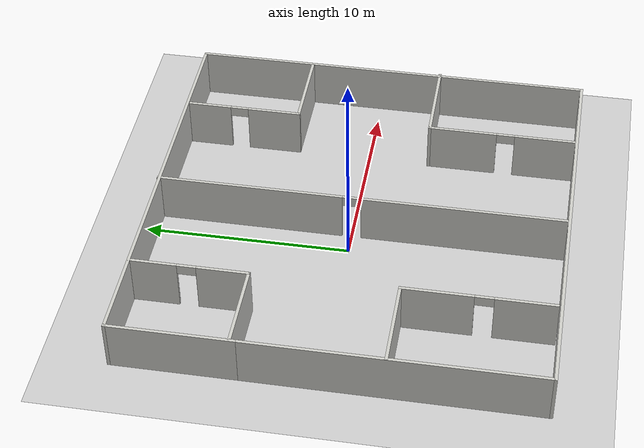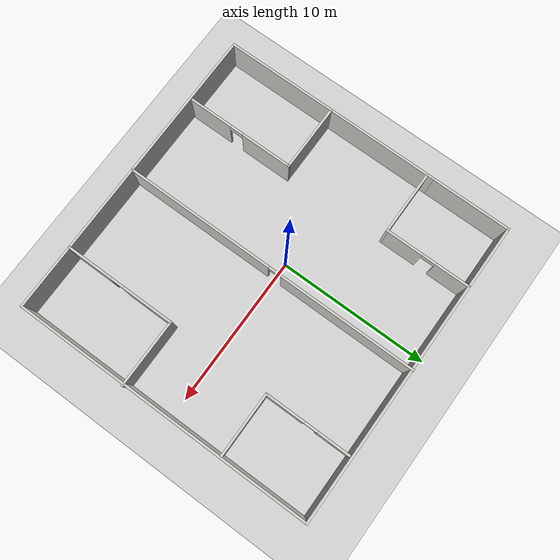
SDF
<sdf version="1.7">
 <world name="default">
  <light name="sun" type="directional">
   <pose>0 0 10 0 -0 0</pose>
   <diffuse>0.8 0.8 0.8 1</diffuse>
   <specular>0.2 0.2 0.2 1</specular>
   <attenuation>
    <range>1000</range>
    <constant>0.9</constant>
    <linear>0.01</linear>
    <quadratic>0.001</quadratic>
   </attenuation>
   <direction>-0.5 0.1 -0.9</direction>
   <spot><inner_angle>0</inner_angle><outer_angle>0</outer_angle><falloff>0</falloff></spot>
  </light>
  <model name="ground_plane">
   <static>1</static>
   <link name="link">
    <collision name="collision">
     <geometry><plane><normal>0 0 1</normal><size>100 100</size></plane></geometry>
     <surface>
      <contact><collide_bitmask>65535</collide_bitmask></contact>
      <friction><ode><mu>100</mu><mu2>50</mu2></ode></friction>
     </surface>
    </collision>
    <visual name="visual">
     <cast_shadows>0</cast_shadows>
     <geometry><plane><normal>0 0 1</normal><size>100 100</size></plane></geometry>
     <material>
      <script><uri>file://media/materials/scripts/gazebo.material</uri><name>Gazebo/Grey</name></script>
     </material>
    </visual>
   </link>
  </model>
  <gravity>0 0 -9.8</gravity>
  <magnetic_field>6e-06 2.3e-05 -4.2e-05</magnetic_field>
  <atmosphere type="adiabatic"/>
  <physics type="ode">
   <max_step_size>0.001</max_step_size>
   <real_time_factor>1</real_time_factor>
   <real_time_update_rate>1000</real_time_update_rate>
  </physics>
  <scene><ambient>0.4 0.4 0.4 1</ambient><background>0.7 0.7 0.7 1</background><shadows>1</shadows></scene>
  <spherical_coordinates>
   <surface_model>EARTH_WGS84</surface_model>
   <latitude_deg>0</latitude_deg>
   <longitude_deg>0</longitude_deg>
   <elevation>0</elevation>
   <heading_deg>0</heading_deg>
  </spherical_coordinates>
  <model name="uni.world">
   <pose>1.22453 -0.447827 0 0 -0 0</pose>
   <link name="Wall_62">
    <collision name="Wall_62_Collision">
     <geometry><box><size>14.75 0.15 2.5</size></box></geometry>
     <pose>0 0 1.25 0 -0 0</pose>
    </collision>
    <visual name="Wall_62_Visual">
     <pose>0 0 1.25 0 -0 0</pose>
     <geometry><box><size>14.75 0.15 2.5</size></box></geometry>
     <material>
      <script><uri>file://media/materials/scripts/gazebo.material</uri><name>Gazebo/CeilingTiled</name></script>
      <ambient>1 1 1 1</ambient>
     </material>
     <meta><layer>0</layer></meta>
    </visual>
    <pose>-10.0967 -2.64495 0 0 -0 -1.5708</pose>
   </link>
   <link name="Wall_63">
    <collision name="Wall_63_Collision">
     <geometry><box><size>20.25 0.15 2.5</size></box></geometry>
     <pose>0 0 1.25 0 -0 0</pose>
    </collision>
    <visual name="Wall_63_Visual">
     <pose>0 0 1.25 0 -0 0</pose>
     <geometry><box><size>20.25 0.15 2.5</size></box></geometry>
     <material>
      <script><uri>file://media/materials/scripts/gazebo.material</uri><name>Gazebo/CeilingTiled</name></script>
      <ambient>1 1 1 1</ambient>
     </material>
     <meta><layer>0</layer></meta>
    </visual>
    <pose>-0.046731 -9.94496 0 0 -0 0</pose>
   </link>
   <link name="Wall_64">
    <collision name="Wall_64_Collision">
     <geometry><box><size>20 0.15 2.5</size></box></geometry>
     <pose>0 0 1.25 0 -0 0</pose>
    </collision>
    <visual name="Wall_64_Visual">
     <pose>0 0 1.25 0 -0 0</pose>
     <geometry><box><size>20 0.15 2.5</size></box></geometry>
     <material>
      <script><uri>file://media/materials/scripts/gazebo.material</uri><name>Gazebo/CeilingTiled</name></script>
      <ambient>1 1 1 1</ambient>
     </material>
     <meta><layer>0</layer></meta>
    </visual>
    <pose>10.0033 -0.019955 0 0 -0 1.5708</pose>
   </link>
   <link name="Wall_65">
    <collision name="Wall_65_Collision">
     <geometry><box><size>20.25 0.15 2.5</size></box></geometry>
     <pose>0 0 1.25 0 -0 0</pose>
    </collision>
    <visual name="Wall_65_Visual">
     <pose>0 0 1.25 0 -0 0</pose>
     <geometry><box><size>20.25 0.15 2.5</size></box></geometry>
     <material>
      <script><uri>file://media/materials/scripts/gazebo.material</uri><name>Gazebo/CeilingTiled</name></script>
      <ambient>1 1 1 1</ambient>
     </material>
     <meta><layer>0</layer></meta>
    </visual>
    <pose>-0.046731 9.90504 0 0 -0 3.14159</pose>
   </link>
   <link name="Wall_66">
    <collision name="Wall_66_Collision">
     <geometry><box><size>6 0.15 2.5</size></box></geometry>
     <pose>0 0 1.25 0 -0 0</pose>
    </collision>
    <visual name="Wall_66_Visual">
     <pose>0 0 1.25 0 -0 0</pose>
     <geometry><box><size>6 0.15 2.5</size></box></geometry>
     <material>
      <script><uri>file://media/materials/scripts/gazebo.material</uri><name>Gazebo/CeilingTiled</name></script>
      <ambient>1 1 1 1</ambient>
     </material>
     <meta><layer>0</layer></meta>
    </visual>
    <pose>-10.0967 6.98004 0 0 -0 -1.5708</pose>
   </link>
   <link name="Wall_70">
    <pose>-0.092284 0.019955 0 0 -0 -1.5708</pose>
    <visual name="Wall_70_Visual_0">
     <pose>-5.44678 0 1.25 0 -0 0</pose>
     <geometry><box><size>9.10645 0.15 2.5</size></box></geometry>
     <material>
      <script><uri>file://media/materials/scripts/gazebo.material</uri><name>Gazebo/CeilingTiled</name></script>
      <ambient>1 1 1 1</ambient>
     </material>
     <meta><layer>0</layer></meta>
    </visual>
    <collision name="Wall_70_Collision_0">
     <geometry><box><size>9.10645 0.15 2.5</size></box></geometry>
     <pose>-5.44678 0 1.25 0 -0 0</pose>
    </collision>
    <visual name="Wall_70_Visual_1">
     <pose>5.00322 0 1.25 0 -0 0</pose>
     <geometry><box><size>9.99355 0.15 2.5</size></box></geometry>
     <material>
      <script><uri>file://media/materials/scripts/gazebo.material</uri><name>Gazebo/CeilingTiled</name></script>
      <ambient>1 1 1 1</ambient>
     </material>
     <meta><layer>0</layer></meta>
    </visual>
    <collision name="Wall_70_Collision_1">
     <geometry><box><size>9.99355 0.15 2.5</size></box></geometry>
     <pose>5.00322 0 1.25 0 -0 0</pose>
    </collision>
    <visual name="Wall_70_Visual_2">
     <pose>-0.443554 0 2.25 0 -0 0</pose>
     <geometry><box><size>0.9 0.15 0.5</size></box></geometry>
     <material>
      <script><uri>file://media/materials/scripts/gazebo.material</uri><name>Gazebo/CeilingTiled</name></script>
      <ambient>1 1 1 1</ambient>
     </material>
     <meta><layer>0</layer></meta>
    </visual>
    <collision name="Wall_70_Collision_2">
     <geometry><box><size>0.9 0.15 0.5</size></box></geometry>
     <pose>-0.443554 0 2.25 0 -0 0</pose>
    </collision>
   </link>
   <link name="Wall_72">
    <pose>-5.89436 7.0742 0 0 -0 -1.5708</pose>
    <visual name="Wall_72_Visual_0">
     <pose>-1.71812 0 1.25 0 -0 0</pose>
     <geometry><box><size>2.31377 0.15 2.5</size></box></geometry>
     <material>
      <script><uri>file://media/materials/scripts/gazebo.material</uri><name>Gazebo/CeilingTiled</name></script>
      <ambient>1 1 1 1</ambient>
     </material>
     <meta><layer>0</layer></meta>
    </visual>
    <collision name="Wall_72_Collision_0">
     <geometry><box><size>2.31377 0.15 2.5</size></box></geometry>
     <pose>-1.71812 0 1.25 0 -0 0</pose>
    </collision>
    <visual name="Wall_72_Visual_1">
     <pose>1.60688 0 1.25 0 -0 0</pose>
     <geometry><box><size>2.53623 0.15 2.5</size></box></geometry>
     <material>
      <script><uri>file://media/materials/scripts/gazebo.material</uri><name>Gazebo/CeilingTiled</name></script>
      <ambient>1 1 1 1</ambient>
     </material>
     <meta><layer>0</layer></meta>
    </visual>
    <collision name="Wall_72_Collision_1">
     <geometry><box><size>2.53623 0.15 2.5</size></box></geometry>
     <pose>1.60688 0 1.25 0 -0 0</pose>
    </collision>
    <visual name="Wall_72_Visual_2">
     <pose>-0.111232 0 2.25 0 -0 0</pose>
     <geometry><box><size>0.9 0.15 0.5</size></box></geometry>
     <material>
      <script><uri>file://media/materials/scripts/gazebo.material</uri><name>Gazebo/CeilingTiled</name></script>
      <ambient>1 1 1 1</ambient>
     </material>
     <meta><layer>0</layer></meta>
    </visual>
    <collision name="Wall_72_Collision_2">
     <geometry><box><size>0.9 0.15 0.5</size></box></geometry>
     <pose>-0.111232 0 2.25 0 -0 0</pose>
    </collision>
   </link>
   <link name="Wall_73">
    <collision name="Wall_73_Collision">
     <geometry><box><size>4.25 0.15 2.5</size></box></geometry>
     <pose>0 0 1.25 0 -0 0</pose>
    </collision>
    <visual name="Wall_73_Visual">
     <pose>0 0 1.25 0 -0 0</pose>
     <geometry><box><size>4.25 0.15 2.5</size></box></geometry>
     <material>
      <script><uri>file://media/materials/scripts/gazebo.material</uri><name>Gazebo/CeilingTiled</name></script>
      <ambient>1 1 1 1</ambient>
     </material>
     <meta><layer>0</layer></meta>
    </visual>
    <pose>-7.94436 4.2742 0 0 -0 3.14159</pose>
   </link>
   <link name="Wall_78">
    <collision name="Wall_78_Collision">
     <geometry><box><size>4.5 0.15 2.5</size></box></geometry>
     <pose>0 0 1.25 0 -0 0</pose>
    </collision>
    <visual name="Wall_78_Visual">
     <pose>0 0 1.25 0 -0 0</pose>
     <geometry><box><size>4.5 0.15 2.5</size></box></geometry>
     <material>
      <script><uri>file://media/materials/scripts/gazebo.material</uri><name>Gazebo/CeilingTiled</name></script>
      <ambient>1 1 1 1</ambient>
     </material>
     <meta><layer>0</layer></meta>
    </visual>
    <pose>-7.89403 -2.6498 0 0 -0 0</pose>
   </link>
   <link name="Wall_79">
    <pose>-5.71903 -6.1998 0 0 -0 -1.5708</pose>
    <visual name="Wall_79_Visual_0">
     <pose>-1.90206 0 1.25 0 -0 0</pose>
     <geometry><box><size>3.44588 0.15 2.5</size></box></geometry>
     <material>
      <script><uri>file://media/materials/scripts/gazebo.material</uri><name>Gazebo/CeilingTiled</name></script>
      <ambient>1 1 1 1</ambient>
     </material>
     <meta><layer>0</layer></meta>
    </visual>
    <collision name="Wall_79_Collision_0">
     <geometry><box><size>3.44588 0.15 2.5</size></box></geometry>
     <pose>-1.90206 0 1.25 0 -0 0</pose>
    </collision>
    <visual name="Wall_79_Visual_1">
     <pose>2.17294 0 1.25 0 -0 0</pose>
     <geometry><box><size>2.90412 0.15 2.5</size></box></geometry>
     <material>
      <script><uri>file://media/materials/scripts/gazebo.material</uri><name>Gazebo/CeilingTiled</name></script>
      <ambient>1 1 1 1</ambient>
     </material>
     <meta><layer>0</layer></meta>
    </visual>
    <collision name="Wall_79_Collision_1">
     <geometry><box><size>2.90412 0.15 2.5</size></box></geometry>
     <pose>2.17294 0 1.25 0 -0 0</pose>
    </collision>
    <visual name="Wall_79_Visual_2">
     <pose>0.270881 0 2.25 0 -0 0</pose>
     <geometry><box><size>0.9 0.15 0.5</size></box></geometry>
     <material>
      <script><uri>file://media/materials/scripts/gazebo.material</uri><name>Gazebo/CeilingTiled</name></script>
      <ambient>1 1 1 1</ambient>
     </material>
     <meta><layer>0</layer></meta>
    </visual>
    <collision name="Wall_79_Collision_2">
     <geometry><box><size>0.9 0.15 0.5</size></box></geometry>
     <pose>0.270881 0 2.25 0 -0 0</pose>
    </collision>
   </link>
   <link name="Wall_81">
    <collision name="Wall_81_Collision">
     <geometry><box><size>4.5 0.15 2.5</size></box></geometry>
     <pose>0 0 1.25 0 -0 0</pose>
    </collision>
    <visual name="Wall_81_Visual">
     <pose>0 0 1.25 0 -0 0</pose>
     <geometry><box><size>4.5 0.15 2.5</size></box></geometry>
     <material>
      <script><uri>file://media/materials/scripts/gazebo.material</uri><name>Gazebo/CeilingTiled</name></script>
      <ambient>1 1 1 1</ambient>
     </material>
     <meta><layer>0</layer></meta>
    </visual>
    <pose>7.92173 -2.57904 0 0 -0 3.14159</pose>
   </link>
   <link name="Wall_82">
    <pose>5.74673 -6.25404 0 0 -0 -1.5708</pose>
    <visual name="Wall_82_Visual_0">
     <pose>-2.02706 0 1.25 0 -0 0</pose>
     <geometry><box><size>3.44588 0.15 2.5</size></box></geometry>
     <material>
      <script><uri>file://media/materials/scripts/gazebo.material</uri><name>Gazebo/CeilingTiled</name></script>
      <ambient>1 1 1 1</ambient>
     </material>
     <meta><layer>0</layer></meta>
    </visual>
    <collision name="Wall_82_Collision_0">
     <geometry><box><size>3.44588 0.15 2.5</size></box></geometry>
     <pose>-2.02706 0 1.25 0 -0 0</pose>
    </collision>
    <visual name="Wall_82_Visual_1">
     <pose>2.17294 0 1.25 0 -0 0</pose>
     <geometry><box><size>3.15412 0.15 2.5</size></box></geometry>
     <material>
      <script><uri>file://media/materials/scripts/gazebo.material</uri><name>Gazebo/CeilingTiled</name></script>
      <ambient>1 1 1 1</ambient>
     </material>
     <meta><layer>0</layer></meta>
    </visual>
    <collision name="Wall_82_Collision_1">
     <geometry><box><size>3.15412 0.15 2.5</size></box></geometry>
     <pose>2.17294 0 1.25 0 -0 0</pose>
    </collision>
    <visual name="Wall_82_Visual_2">
     <pose>0.145881 0 2.25 0 -0 0</pose>
     <geometry><box><size>0.9 0.15 0.5</size></box></geometry>
     <material>
      <script><uri>file://media/materials/scripts/gazebo.material</uri><name>Gazebo/CeilingTiled</name></script>
      <ambient>1 1 1 1</ambient>
     </material>
     <meta><layer>0</layer></meta>
    </visual>
    <collision name="Wall_82_Collision_2">
     <geometry><box><size>0.9 0.15 0.5</size></box></geometry>
     <pose>0.145881 0 2.25 0 -0 0</pose>
    </collision>
   </link>
   <link name="Wall_84">
    <pose>5.78055 6.93268 0 0 -0 -1.5708</pose>
    <visual name="Wall_84_Visual_0">
     <pose>-1.78887 0 1.25 0 -0 0</pose>
     <geometry><box><size>2.17225 0.15 2.5</size></box></geometry>
     <material>
      <script><uri>file://media/materials/scripts/gazebo.material</uri><name>Gazebo/CeilingTiled</name></script>
      <ambient>1 1 1 1</ambient>
     </material>
     <meta><layer>0</layer></meta>
    </visual>
    <collision name="Wall_84_Collision_0">
     <geometry><box><size>2.17225 0.15 2.5</size></box></geometry>
     <pose>-1.78887 0 1.25 0 -0 0</pose>
    </collision>
    <visual name="Wall_84_Visual_1">
     <pose>1.53613 0 1.25 0 -0 0</pose>
     <geometry><box><size>2.67775 0.15 2.5</size></box></geometry>
     <material>
      <script><uri>file://media/materials/scripts/gazebo.material</uri><name>Gazebo/CeilingTiled</name></script>
      <ambient>1 1 1 1</ambient>
     </material>
     <meta><layer>0</layer></meta>
    </visual>
    <collision name="Wall_84_Collision_1">
     <geometry><box><size>2.67775 0.15 2.5</size></box></geometry>
     <pose>1.53613 0 1.25 0 -0 0</pose>
    </collision>
    <visual name="Wall_84_Visual_2">
     <pose>-0.252746 0 2.25 0 -0 0</pose>
     <geometry><box><size>0.9 0.15 0.5</size></box></geometry>
     <material>
      <script><uri>file://media/materials/scripts/gazebo.material</uri><name>Gazebo/CeilingTiled</name></script>
      <ambient>1 1 1 1</ambient>
     </material>
     <meta><layer>0</layer></meta>
    </visual>
    <collision name="Wall_84_Collision_2">
     <geometry><box><size>0.9 0.15 0.5</size></box></geometry>
     <pose>-0.252746 0 2.25 0 -0 0</pose>
    </collision>
   </link>
   <link name="Wall_85">
    <collision name="Wall_85_Collision">
     <geometry><box><size>4.25 0.15 2.5</size></box></geometry>
     <pose>0 0 1.25 0 -0 0</pose>
    </collision>
    <visual name="Wall_85_Visual">
     <pose>0 0 1.25 0 -0 0</pose>
     <geometry><box><size>4.25 0.15 2.5</size></box></geometry>
     <material>
      <script><uri>file://media/materials/scripts/gazebo.material</uri><name>Gazebo/CeilingTiled</name></script>
      <ambient>1 1 1 1</ambient>
     </material>
     <meta><layer>0</layer></meta>
    </visual>
    <pose>7.83055 4.13268 0 0 -0 0</pose>
   </link>
   <static>1</static>
  </model>
 </world>
</sdf>
